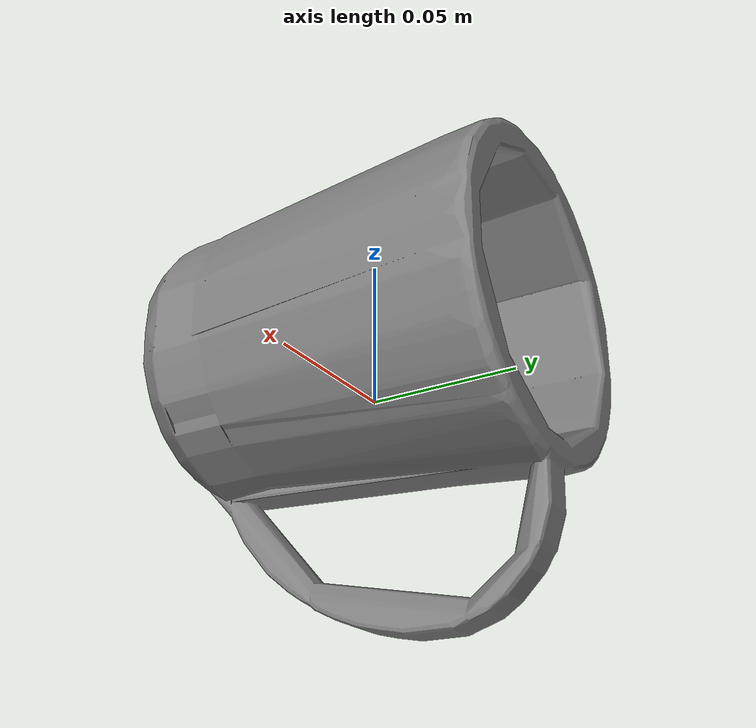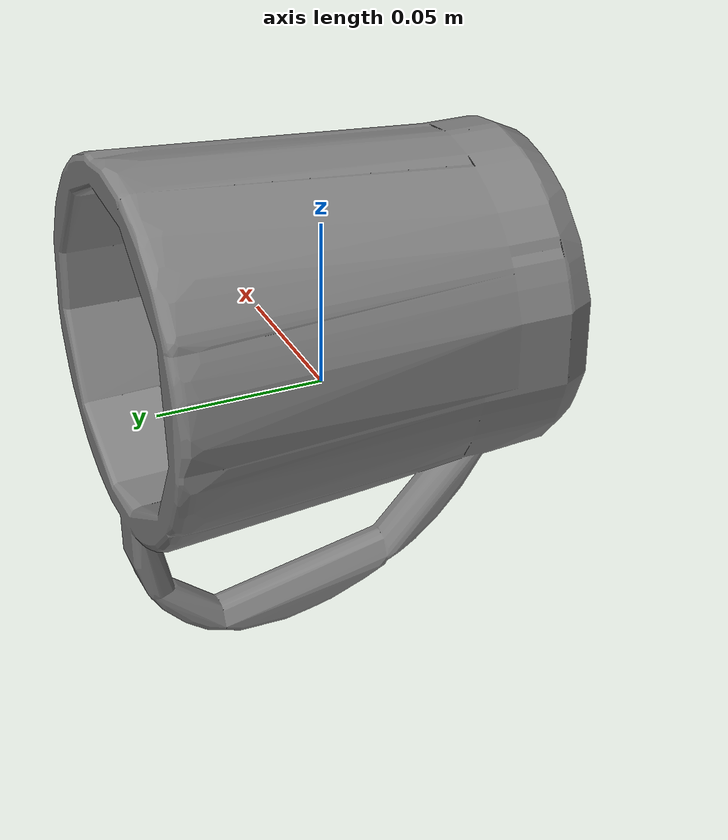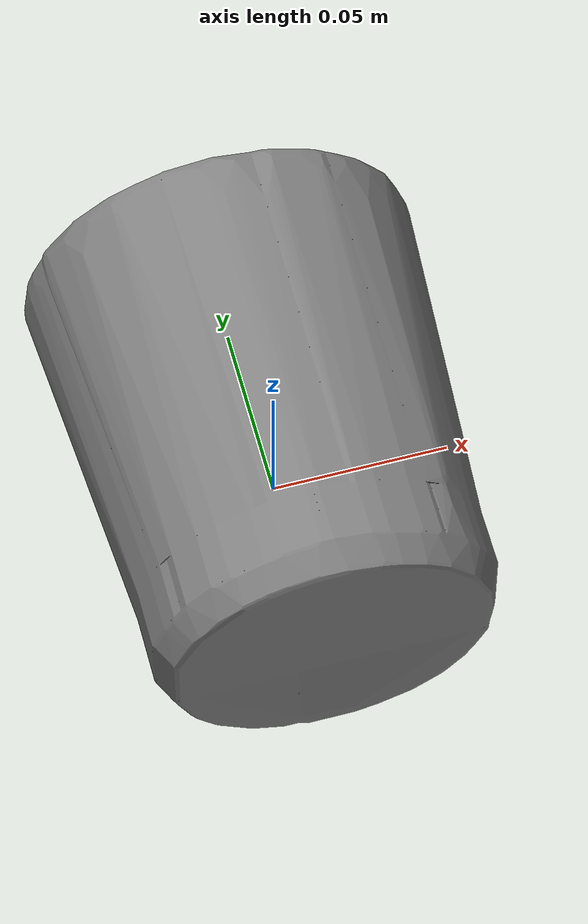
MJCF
<mujoco model="decomposed">
  <default>
    <default class="visual">
      <geom conaffinity="1" contype="1" group="2" type="mesh" />
    </default>
    <default class="collision">
      <geom group="3" type="mesh" />
    </default>
  </default>
  <asset>
        <mesh file="../../meshh/core-mug-8570d9a8d24cb0acbebd3c0c0c70fb03/coacd/decomposed/decomposed.obj" scale="0.10000000149011612 0.10000000149011612 0.10000000149011612" />
  </asset>
  <worldbody>
    <body name="decomposed">
      <joint type="free" />
      <geom class="visual" friction="1 1 .1" mass="0" mesh="decomposed" />
      <geom class="collision" friction="1 1 .1" mass="0.002" mesh="decomposed" />
    </body>
  </worldbody>
</mujoco>
